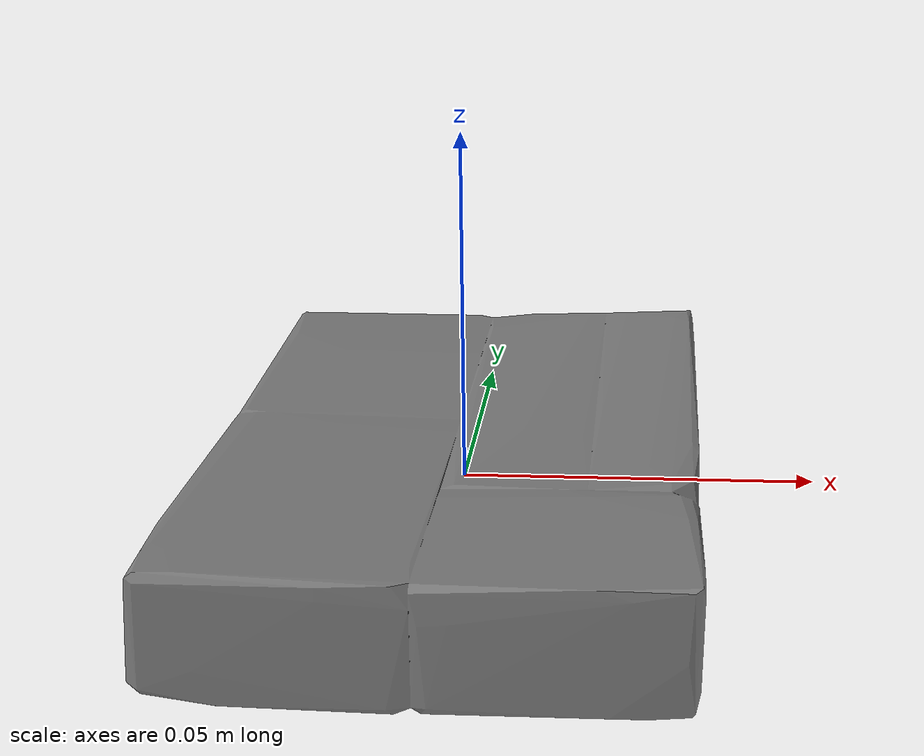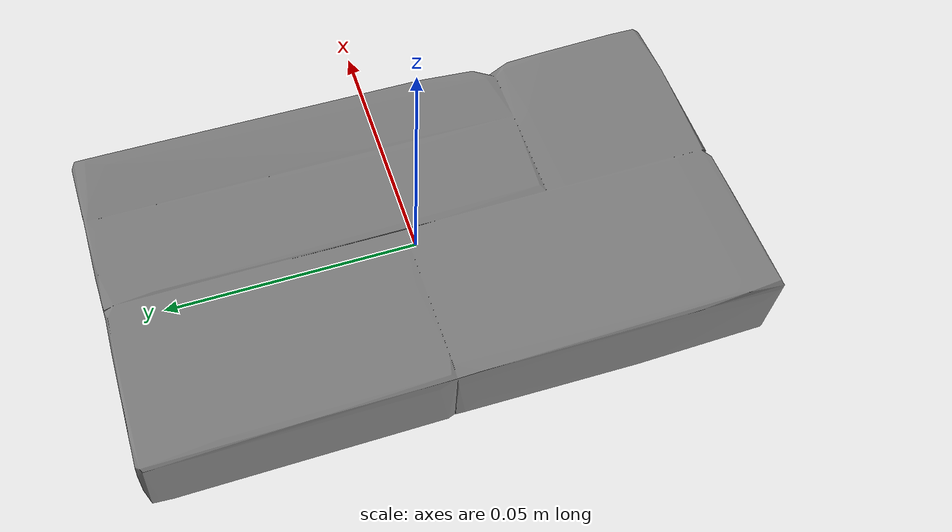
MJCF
<mujoco model="sponge_Big_O_Sponges_Assorted_Cellulose_12_pack_M">
  <default>
    <default class="visual">
      <geom group="2" type="mesh" contype="0" conaffinity="0" />
    </default>
    <default class="collision">
      <geom group="3" type="mesh" />
    </default>
  </default>
  <asset>
    <mesh file="sponge_Big_O_Sponges_Assorted_Cellulose_12_pack_M.stl" />
    <mesh file="sponge_Big_O_Sponges_Assorted_Cellulose_12_pack_M_collision_0.stl" />
    <mesh file="sponge_Big_O_Sponges_Assorted_Cellulose_12_pack_M_collision_1.stl" />
    <mesh file="sponge_Big_O_Sponges_Assorted_Cellulose_12_pack_M_collision_2.stl" />
    <mesh file="sponge_Big_O_Sponges_Assorted_Cellulose_12_pack_M_collision_3.stl" />
    <mesh file="sponge_Big_O_Sponges_Assorted_Cellulose_12_pack_M_collision_4.stl" />
    <mesh file="sponge_Big_O_Sponges_Assorted_Cellulose_12_pack_M_collision_5.stl" />
    <mesh file="sponge_Big_O_Sponges_Assorted_Cellulose_12_pack_M_collision_6.stl" />
    <mesh file="sponge_Big_O_Sponges_Assorted_Cellulose_12_pack_M_collision_7.stl" />
    <mesh file="sponge_Big_O_Sponges_Assorted_Cellulose_12_pack_M_collision_8.stl" />
    <mesh file="sponge_Big_O_Sponges_Assorted_Cellulose_12_pack_M_collision_9.stl" />
    <mesh file="sponge_Big_O_Sponges_Assorted_Cellulose_12_pack_M_collision_10.stl" />
    <mesh file="sponge_Big_O_Sponges_Assorted_Cellulose_12_pack_M_collision_11.stl" />
    <mesh file="sponge_Big_O_Sponges_Assorted_Cellulose_12_pack_M_collision_12.stl" />
    <mesh file="sponge_Big_O_Sponges_Assorted_Cellulose_12_pack_M_collision_13.stl" />
    <mesh file="sponge_Big_O_Sponges_Assorted_Cellulose_12_pack_M_collision_14.stl" />
    <mesh file="sponge_Big_O_Sponges_Assorted_Cellulose_12_pack_M_collision_15.stl" />
  </asset>
  <worldbody>
    <body name="sponge_Big_O_Sponges_Assorted_Cellulose_12_pack_M">
      <geom mesh="sponge_Big_O_Sponges_Assorted_Cellulose_12_pack_M" class="visual" />
      <geom mesh="sponge_Big_O_Sponges_Assorted_Cellulose_12_pack_M_collision_0" class="collision" />
      <geom mesh="sponge_Big_O_Sponges_Assorted_Cellulose_12_pack_M_collision_1" class="collision" />
      <geom mesh="sponge_Big_O_Sponges_Assorted_Cellulose_12_pack_M_collision_2" class="collision" />
      <geom mesh="sponge_Big_O_Sponges_Assorted_Cellulose_12_pack_M_collision_3" class="collision" />
      <geom mesh="sponge_Big_O_Sponges_Assorted_Cellulose_12_pack_M_collision_4" class="collision" />
      <geom mesh="sponge_Big_O_Sponges_Assorted_Cellulose_12_pack_M_collision_5" class="collision" />
      <geom mesh="sponge_Big_O_Sponges_Assorted_Cellulose_12_pack_M_collision_6" class="collision" />
      <geom mesh="sponge_Big_O_Sponges_Assorted_Cellulose_12_pack_M_collision_7" class="collision" />
      <geom mesh="sponge_Big_O_Sponges_Assorted_Cellulose_12_pack_M_collision_8" class="collision" />
      <geom mesh="sponge_Big_O_Sponges_Assorted_Cellulose_12_pack_M_collision_9" class="collision" />
      <geom mesh="sponge_Big_O_Sponges_Assorted_Cellulose_12_pack_M_collision_10" class="collision" />
      <geom mesh="sponge_Big_O_Sponges_Assorted_Cellulose_12_pack_M_collision_11" class="collision" />
      <geom mesh="sponge_Big_O_Sponges_Assorted_Cellulose_12_pack_M_collision_12" class="collision" />
      <geom mesh="sponge_Big_O_Sponges_Assorted_Cellulose_12_pack_M_collision_13" class="collision" />
      <geom mesh="sponge_Big_O_Sponges_Assorted_Cellulose_12_pack_M_collision_14" class="collision" />
      <geom mesh="sponge_Big_O_Sponges_Assorted_Cellulose_12_pack_M_collision_15" class="collision" />
    </body>
  </worldbody>
</mujoco>
